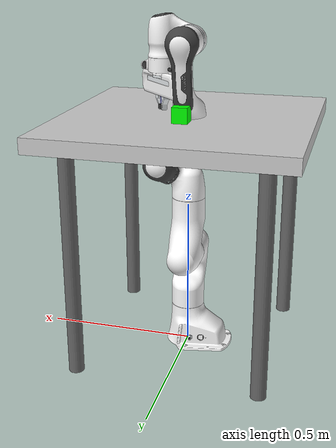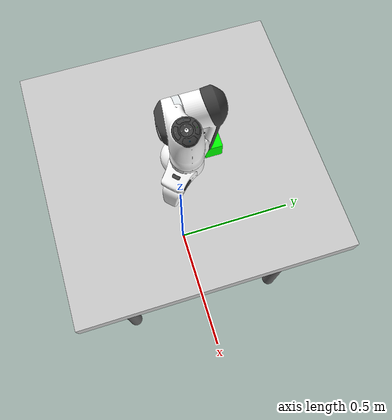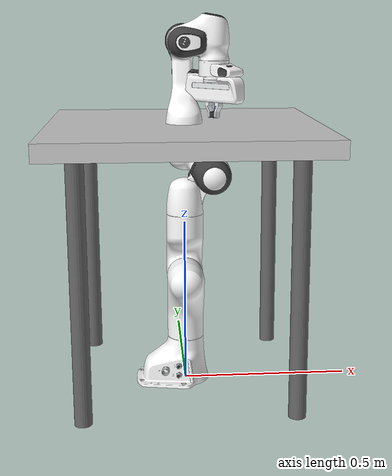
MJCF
<mujoco model="panda">
  <compiler angle="radian" meshdir="assets" autolimits="true"/>
  <option impratio="20" cone="elliptic" density="1.2" viscosity="0.00002" timestep="0.002" />
  <size nconmax="5000" njmax="5000" />

  <option integrator="implicitfast"/>

  <default>
    <default class="panda">
      <material specular="0.5" shininess="0.25"/>
      <joint armature="0.1" damping="1" axis="0 0 1" range="-2.8973 2.8973"/>
      <default class="finger">
        <joint axis="0 1 0" type="slide" range="0 0.04"/>
      </default>
      <default class="visual">
        <geom type="mesh" contype="0" conaffinity="0" group="2"/>
      </default>
      <default class="collision">
        <geom type="mesh" group="3"/>
      </default>
    </default>
  </default>

  <asset>
    <material class="panda" name="white" rgba="1 1 1 1"/>
    <material class="panda" name="off_white" rgba="0.901961 0.921569 0.929412 1"/>
    <material class="panda" name="black" rgba="0.25 0.25 0.25 1"/>
    <material class="panda" name="green" rgba="0 1 0 1"/>
    <material class="panda" name="light_blue" rgba="0.039216 0.541176 0.780392 1"/>

    <!-- Add materials for the table -->
    <material name="table_ceramic" rgba="0.8 0.8 0.8 1" shininess="0.0" specular="0.2"/>
    <material name="table_legs_metal" rgba="0.4 0.4 0.4 1" shininess="0.8" reflectance="0.8"/>

    <!-- Sensor pad material -->
    <material name="sensor_pad_material" rgba="0.3 0.3 0.8 0.5" shininess="0.0" specular="0.0"/>

    <!-- Cube materials to match original environment -->
    <material name="cubeA_redwood_mat" rgba="1 0 0 1" specular="0.4" shininess="0.1"/>
    <material name="cubeB_greenwood_mat" rgba="0 1 0 1" specular="0.4" shininess="0.1"/>

    <!-- Collision meshes -->
    <mesh name="link0_c" file="link0.stl"/>
    <mesh name="link1_c" file="link1.stl"/>
    <mesh name="link2_c" file="link2.stl"/>
    <mesh name="link3_c" file="link3.stl"/>
    <mesh name="link4_c" file="link4.stl"/>
    <mesh name="link5_c0" file="link5_collision_0.obj"/>
    <mesh name="link5_c1" file="link5_collision_1.obj"/>
    <mesh name="link5_c2" file="link5_collision_2.obj"/>
    <mesh name="link6_c" file="link6.stl"/>
    <mesh name="link7_c" file="link7.stl"/>
    <mesh name="hand_c" file="hand.stl"/>

    <!-- Visual meshes -->
    <mesh file="link0_0.obj"/>
    <mesh file="link0_1.obj"/>
    <mesh file="link0_2.obj"/>
    <mesh file="link0_3.obj"/>
    <mesh file="link0_4.obj"/>
    <mesh file="link0_5.obj"/>
    <mesh file="link0_7.obj"/>
    <mesh file="link0_8.obj"/>
    <mesh file="link0_9.obj"/>
    <mesh file="link0_10.obj"/>
    <mesh file="link0_11.obj"/>
    <mesh file="link1.obj"/>
    <mesh file="link2.obj"/>
    <mesh file="link3_0.obj"/>
    <mesh file="link3_1.obj"/>
    <mesh file="link3_2.obj"/>
    <mesh file="link3_3.obj"/>
    <mesh file="link4_0.obj"/>
    <mesh file="link4_1.obj"/>
    <mesh file="link4_2.obj"/>
    <mesh file="link4_3.obj"/>
    <mesh file="link5_0.obj"/>
    <mesh file="link5_1.obj"/>
    <mesh file="link5_2.obj"/>
    <mesh file="link6_0.obj"/>
    <mesh file="link6_1.obj"/>
    <mesh file="link6_2.obj"/>
    <mesh file="link6_3.obj"/>
    <mesh file="link6_4.obj"/>
    <mesh file="link6_5.obj"/>
    <mesh file="link6_6.obj"/>
    <mesh file="link6_7.obj"/>
    <mesh file="link6_8.obj"/>
    <mesh file="link6_9.obj"/>
    <mesh file="link6_10.obj"/>
    <mesh file="link6_11.obj"/>
    <mesh file="link6_12.obj"/>
    <mesh file="link6_13.obj"/>
    <mesh file="link6_14.obj"/>
    <mesh file="link6_15.obj"/>
    <mesh file="link6_16.obj"/>
    <mesh file="link7_0.obj"/>
    <mesh file="link7_1.obj"/>
    <mesh file="link7_2.obj"/>
    <mesh file="link7_3.obj"/>
    <mesh file="link7_4.obj"/>
    <mesh file="link7_5.obj"/>
    <mesh file="link7_6.obj"/>
    <mesh file="link7_7.obj"/>
    <mesh file="hand_0.obj"/>
    <mesh file="hand_1.obj"/>
    <mesh file="hand_2.obj"/>
    <mesh file="hand_3.obj"/>
    <mesh file="hand_4.obj"/>
    <mesh file="finger_0.obj"/>
    <mesh file="finger_1.obj"/>
  </asset>

  <worldbody>
    <light name="top" pos="0 0 2" mode="trackcom"/>

    <!-- Modified table body - removed static attribute and adjusted height -->
    <body name="table" pos="0.0 0.0 0.775">
      <geom pos="0 0 0" size="0.4 0.4 0.025" type="box" group="3" name="table_collision" friction="1.0 0.005 0.0001" rgba="0.5 0.5 0 1" />
      <geom pos="0 0 0" size="0.4 0.4 0.025" type="box" conaffinity="0" contype="0" group="2" name="table_visual" material="table_ceramic" />

      <!-- Adjusted table legs to match original -->
      <geom pos="0.30 0.30 -0.3875" size="0.025 0.3875" type="cylinder" conaffinity="0" contype="0" group="2" name="table_leg1_visual" material="table_legs_metal" />
      <geom pos="-0.30 0.30 -0.3875" size="0.025 0.3875" type="cylinder" conaffinity="0" contype="0" group="2" name="table_leg2_visual" material="table_legs_metal" />
      <geom pos="-0.30 -0.30 -0.3875" size="0.025 0.3875" type="cylinder" conaffinity="0" contype="0" group="2" name="table_leg3_visual" material="table_legs_metal" />
      <geom pos="0.30 -0.30 -0.3875" size="0.025 0.3875" type="cylinder" conaffinity="0" contype="0" group="2" name="table_leg4_visual" material="table_legs_metal" />

      <!-- Added table_top site from original -->
      <site pos="0.0 0.0 0.025" name="table_top" size="0.001 0.001 0.001" rgba="0 0 0 0" />
    </body>

    <!-- Updated cubes to match original environment's structure -->
    <!-- cubeA: 2cm × 2cm × 2cm -->
    <body name="cubeA_main" pos="0.0 0.0 0.825">
      <joint type="free" name="cubeA_joint0" />
      <geom type="box" name="cubeA_g0" size="0.02 0.02 0.02" condim="3"
       friction="1 0.005 0.0001" solref="0.02 1.0" solimp="0.9 0.95 0.001" rgba="0.5 0 0 1" density="1000" group="3" />
      <geom type="box" name="cubeA_g0_vis" size="0.02 0.02 0.02" conaffinity="0" contype="0" mass="1e-8" material="cubeA_redwood_mat" group="2" />
      <site type="sphere" group="0" pos="0 0 0" size="0.002 0.002 0.002" rgba="1 0 0 1" name="cubeA_default_site" />
    </body>

    <!-- cubeB: 2.5cm × 2.5cm × 2.5cm -->
    <body name="cubeB_main" pos="0.0 0.1 0.825">
      <joint type="free" name="cubeB_joint0" />
      <geom type="box" name="cubeB_g0" size="0.025 0.025 0.025" condim="3"
       friction="1 0.005 0.0001" solref="0.02 1.0" solimp="0.9 0.95 0.001" rgba="0.5 0 0 1" density="1000" group="3" />
      <geom type="box" name="cubeB_g0_vis" size="0.025 0.025 0.025" conaffinity="0" contype="0" mass="1e-8" material="cubeB_greenwood_mat" group="2" />
      <site type="sphere" group="0" pos="0 0 0" size="0.002 0.002 0.002" rgba="1 0 0 1" name="cubeB_default_site" />
    </body>

    <body name="link0" childclass="panda">
      <inertial mass="0.629769" pos="-0.041018 -0.00014 0.049974"
        fullinertia="0.00315 0.00388 0.004285 8.2904e-7 0.00015 8.2299e-6"/>
      <geom mesh="link0_0" material="off_white" class="visual"/>
      <geom mesh="link0_1" material="black" class="visual"/>
      <geom mesh="link0_2" material="off_white" class="visual"/>
      <geom mesh="link0_3" material="black" class="visual"/>
      <geom mesh="link0_4" material="off_white" class="visual"/>
      <geom mesh="link0_5" material="black" class="visual"/>
      <geom mesh="link0_7" material="white" class="visual"/>
      <geom mesh="link0_8" material="white" class="visual"/>
      <geom mesh="link0_9" material="black" class="visual"/>
      <geom mesh="link0_10" material="off_white" class="visual"/>
      <geom mesh="link0_11" material="white" class="visual"/>
      <geom mesh="link0_c" class="collision"/>
      <body name="link1" pos="0 0 0.333">
        <inertial mass="4.970684" pos="0.003875 0.002081 -0.04762"
          fullinertia="0.70337 0.70661 0.0091170 -0.00013900 0.0067720 0.019169"/>
        <joint name="robot0_joint1"/>
        <geom material="white" mesh="link1" class="visual"/>
        <geom mesh="link1_c" class="collision"/>
        <body name="link2" quat="1 -1 0 0">
          <inertial mass="0.646926" pos="-0.003141 -0.02872 0.003495"
            fullinertia="0.0079620 2.8110e-2 2.5995e-2 -3.925e-3 1.0254e-2 7.04e-4"/>
          <joint name="robot0_joint2" range="-1.7628 1.7628"/>
          <geom material="white" mesh="link2" class="visual"/>
          <geom mesh="link2_c" class="collision"/>
          <body name="link3" pos="0 -0.316 0" quat="1 1 0 0">
            <joint name="robot0_joint3"/>
            <inertial mass="3.228604" pos="2.7518e-2 3.9252e-2 -6.6502e-2"
              fullinertia="3.7242e-2 3.6155e-2 1.083e-2 -4.761e-3 -1.1396e-2 -1.2805e-2"/>
            <geom mesh="link3_0" material="white" class="visual"/>
            <geom mesh="link3_1" material="white" class="visual"/>
            <geom mesh="link3_2" material="white" class="visual"/>
            <geom mesh="link3_3" material="black" class="visual"/>
            <geom mesh="link3_c" class="collision"/>
            <body name="link4" pos="0.0825 0 0" quat="1 1 0 0">
              <inertial mass="3.587895" pos="-5.317e-2 1.04419e-1 2.7454e-2"
                fullinertia="2.5853e-2 1.9552e-2 2.8323e-2 7.796e-3 -1.332e-3 8.641e-3"/>
              <joint name="robot0_joint4" range="-3.0718 -0.0698"/>
              <geom mesh="link4_0" material="white" class="visual"/>
              <geom mesh="link4_1" material="white" class="visual"/>
              <geom mesh="link4_2" material="black" class="visual"/>
              <geom mesh="link4_3" material="white" class="visual"/>
              <geom mesh="link4_c" class="collision"/>
              <body name="link5" pos="-0.0825 0.384 0" quat="1 -1 0 0">
                <inertial mass="1.225946" pos="-1.1953e-2 4.1065e-2 -3.8437e-2"
                  fullinertia="3.5549e-2 2.9474e-2 8.627e-3 -2.117e-3 -4.037e-3 2.29e-4"/>
                <joint name="robot0_joint5"/>
                <geom mesh="link5_0" material="black" class="visual"/>
                <geom mesh="link5_1" material="white" class="visual"/>
                <geom mesh="link5_2" material="white" class="visual"/>
                <geom mesh="link5_c0" class="collision"/>
                <geom mesh="link5_c1" class="collision"/>
                <geom mesh="link5_c2" class="collision"/>
                <body name="link6" quat="1 1 0 0">
                  <inertial mass="1.666555" pos="6.0149e-2 -1.4117e-2 -1.0517e-2"
                    fullinertia="1.964e-3 4.354e-3 5.433e-3 1.09e-4 -1.158e-3 3.41e-4"/>
                  <joint name="robot0_joint6" range="-0.0175 3.7525"/>
                  <geom mesh="link6_0" material="off_white" class="visual"/>
                  <geom mesh="link6_1" material="white" class="visual"/>
                  <geom mesh="link6_2" material="black" class="visual"/>
                  <geom mesh="link6_3" material="white" class="visual"/>
                  <geom mesh="link6_4" material="white" class="visual"/>
                  <geom mesh="link6_5" material="white" class="visual"/>
                  <geom mesh="link6_6" material="white" class="visual"/>
                  <geom mesh="link6_7" material="light_blue" class="visual"/>
                  <geom mesh="link6_8" material="light_blue" class="visual"/>
                  <geom mesh="link6_9" material="black" class="visual"/>
                  <geom mesh="link6_10" material="black" class="visual"/>
                  <geom mesh="link6_11" material="white" class="visual"/>
                  <geom mesh="link6_12" material="green" class="visual"/>
                  <geom mesh="link6_13" material="white" class="visual"/>
                  <geom mesh="link6_14" material="black" class="visual"/>
                  <geom mesh="link6_15" material="black" class="visual"/>
                  <geom mesh="link6_16" material="white" class="visual"/>
                  <geom mesh="link6_c" class="collision"/>
                  <body name="link7" pos="0.088 0 0" quat="1 1 0 0">
                    <inertial mass="7.35522e-01" pos="1.0517e-2 -4.252e-3 6.1597e-2"
                      fullinertia="1.2516e-2 1.0027e-2 4.815e-3 -4.28e-4 -1.196e-3 -7.41e-4"/>
                    <joint name="robot0_joint7"/>
                    <geom mesh="link7_0" material="white" class="visual"/>
                    <geom mesh="link7_1" material="black" class="visual"/>
                    <geom mesh="link7_2" material="black" class="visual"/>
                    <geom mesh="link7_3" material="black" class="visual"/>
                    <geom mesh="link7_4" material="black" class="visual"/>
                    <geom mesh="link7_5" material="black" class="visual"/>
                    <geom mesh="link7_6" material="black" class="visual"/>
                    <geom mesh="link7_7" material="white" class="visual"/>
                    <geom mesh="link7_c" class="collision"/>
                    <!-- Using right_hand to match original -->
                    <body name="right_hand" pos="0 0 0.1065" quat="0.924 0 0 -0.383">
                      <inertial mass="0.73" pos="-0.01 0 0.03" diaginertia="0.001 0.0025 0.0017"/>
                      <geom mesh="hand_0" material="off_white" class="visual"/>
                      <geom mesh="hand_1" material="black" class="visual"/>
                      <geom mesh="hand_2" material="black" class="visual"/>
                      <geom mesh="hand_3" material="white" class="visual"/>
                      <geom mesh="hand_4" material="off_white" class="visual"/>
                      <geom mesh="hand_c" class="collision"/>

                      <!-- Added essential camera and site elements from original model -->
                      <camera mode="fixed" name="eye_in_hand" pos="0.05 0 0" quat="0 0.707108 0.707108 0" fovy="75"/>
                      <site name="grip_site" pos="0 0 0" size="0.01 0.01 0.01" rgba="1 0 0 0.5" type="sphere" group="1"/>
                      <site name="ee_x" pos="0.1 0 0" size="0.005 .1" quat="0.707105 0 0.707108 0" rgba="1 0 0 0" type="cylinder" group="1"/>
                      <site name="ee_y" pos="0 0.1 0" size="0.005 .1" quat="0.707105 0.707108 0 0" rgba="0 1 0 0" type="cylinder" group="1"/>
                      <site name="ee_z" pos="0 0 0.1" size="0.005 .1" quat="1 0 0 0" rgba="0 0 1 0" type="cylinder" group="1"/>

                      <body name="gripper0_right_leftfinger" pos="0 0 0.0584">
                        <inertial mass="0.015" pos="0 0 0" diaginertia="2.375e-6 2.375e-6 7.5e-7"/>
                        <joint name="gripper0_right_finger_joint1" class="finger"/>
                        <geom mesh="finger_0" material="off_white" class="visual"/>
                        <geom mesh="finger_1" material="black" class="visual"/>
                        <geom mesh="finger_0" class="collision"/>
                        <geom name="left_sensor_pad" type="box" size="0.005 0.001 0.015" pos="0 0.006 0.025" rgba="0.3 0.3 0.8 0.5" material="sensor_pad_material" group="2"/>

                        <!-- Add all left taxel sites here -->
                        <site name="left_taxel_0_0" pos="-0.005000 0.006 0.010000" size="0.001" rgba="0 0 1 0.5" type="sphere" />
                        <site name="left_taxel_0_1" pos="-0.001667 0.006 0.010000" size="0.001" rgba="0 0 1 0.5" type="sphere" />
                        <site name="left_taxel_0_2" pos="0.001667 0.006 0.010000" size="0.001" rgba="0 0 1 0.5" type="sphere" />
                        <site name="left_taxel_0_3" pos="0.005000 0.006 0.010000" size="0.001" rgba="0 0 1 0.5" type="sphere" />
                        <site name="left_taxel_1_0" pos="-0.005000 0.006 0.025000" size="0.001" rgba="0 0 1 0.5" type="sphere" />
                        <site name="left_taxel_1_1" pos="-0.001667 0.006 0.025000" size="0.001" rgba="0 0 1 0.5" type="sphere" />
                        <site name="left_taxel_1_2" pos="0.001667 0.006 0.025000" size="0.001" rgba="0 0 1 0.5" type="sphere" />
                        <site name="left_taxel_1_3" pos="0.005000 0.006 0.025000" size="0.001" rgba="0 0 1 0.5" type="sphere" />
                        <site name="left_taxel_2_0" pos="-0.005000 0.006 0.040000" size="0.001" rgba="0 0 1 0.5" type="sphere" />
                        <site name="left_taxel_2_1" pos="-0.001667 0.006 0.040000" size="0.001" rgba="0 0 1 0.5" type="sphere" />
                        <site name="left_taxel_2_2" pos="0.001667 0.006 0.040000" size="0.001" rgba="0 0 1 0.5" type="sphere" />
                        <site name="left_taxel_2_3" pos="0.005000 0.006 0.040000" size="0.001" rgba="0 0 1 0.5" type="sphere" />
                      </body>
                      <body name="gripper0_right_rightfinger" pos="0 0 0.0584" quat="0 0 0 1">
                        <inertial mass="0.015" pos="0 0 0" diaginertia="2.375e-6 2.375e-6 7.5e-7"/>
                        <joint name="gripper0_right_finger_joint2" class="finger"/>
                        <geom mesh="finger_0" material="off_white" class="visual"/>
                        <geom mesh="finger_1" material="black" class="visual"/>
                        <geom mesh="finger_0" class="collision"/>
                        <geom name="right_sensor_pad" type="box" size="0.005 0.001 0.015" pos="0 -0.006 0.025" rgba="0.3 0.3 0.8 0.5" material="sensor_pad_material" group="2"/>

                        <!-- Add all right taxel sites here -->
                        <site name="right_taxel_0_0" pos="-0.005000 -0.006 0.010000" size="0.001" rgba="1 0 0 0.5" type="sphere" />
                        <site name="right_taxel_0_1" pos="-0.001667 -0.006 0.010000" size="0.001" rgba="1 0 0 0.5" type="sphere" />
                        <site name="right_taxel_0_2" pos="0.001667 -0.006 0.010000" size="0.001" rgba="1 0 0 0.5" type="sphere" />
                        <site name="right_taxel_0_3" pos="0.005000 -0.006 0.010000" size="0.001" rgba="1 0 0 0.5" type="sphere" />
                        <site name="right_taxel_1_0" pos="-0.005000 -0.006 0.025000" size="0.001" rgba="1 0 0 0.5" type="sphere" />
                        <site name="right_taxel_1_1" pos="-0.001667 -0.006 0.025000" size="0.001" rgba="1 0 0 0.5" type="sphere" />
                        <site name="right_taxel_1_2" pos="0.001667 -0.006 0.025000" size="0.001" rgba="1 0 0 0.5" type="sphere" />
                        <site name="right_taxel_1_3" pos="0.005000 -0.006 0.025000" size="0.001" rgba="1 0 0 0.5" type="sphere" />
                        <site name="right_taxel_2_0" pos="-0.005000 -0.006 0.040000" size="0.001" rgba="1 0 0 0.5" type="sphere" />
                        <site name="right_taxel_2_1" pos="-0.001667 -0.006 0.040000" size="0.001" rgba="1 0 0 0.5" type="sphere" />
                        <site name="right_taxel_2_2" pos="0.001667 -0.006 0.040000" size="0.001" rgba="1 0 0 0.5" type="sphere" />
                        <site name="right_taxel_2_3" pos="0.005000 -0.006 0.040000" size="0.001" rgba="1 0 0 0.5" type="sphere" />
                      </body>
                    </body>
                  </body>
                </body>
              </body>
            </body>
          </body>
        </body>
      </body>
    </body>

    <camera mode="fixed" name="frontview" pos="1.6 0.0 1.45" quat="0.56 0.43 0.43 0.56" />
    <camera mode="fixed" name="birdview" pos="-0.2 0.0 3.0" quat="0.7071 0 0 0.7071" />
    <camera mode="fixed" name="agentview" pos="0.5 0.0 1.35" quat="0.653 0.271 0.271 0.653" />
    <camera mode="fixed" name="sideview" pos="-0.05651774593317116 1.2761224129427358 1.4879572214102434" quat="0.009905065491771751 0.006877963156909582 0.5912228352893879 0.806418094001364" />

    <!-- Simple boundary walls (simplified from the base model) -->
    <geom pos="0 0 0.05" size="0.8 0.8 0.01" type="plane" conaffinity="1" contype="1" group="3" name="boundary"/>
  </worldbody>

  <tendon>
    <fixed name="split">
      <joint joint="gripper0_right_finger_joint1" coef="0.5"/>
      <joint joint="gripper0_right_finger_joint2" coef="0.5"/>
    </fixed>
  </tendon>

  <equality>
    <joint joint1="gripper0_right_finger_joint1" joint2="gripper0_right_finger_joint2" solimp="0.95 0.99 0.001" solref="0.005 1"/>
  </equality>

  <!-- IMPORTANT CHANGE: Renamed actuators to match original -->
  <actuator>
    <motor ctrllimited="true" ctrlrange="-80.0 80.0" joint="robot0_joint1" name="robot0_torq_j1"/>
    <motor ctrllimited="true" ctrlrange="-80.0 80.0" joint="robot0_joint2" name="robot0_torq_j2"/>
    <motor ctrllimited="true" ctrlrange="-80.0 80.0" joint="robot0_joint3" name="robot0_torq_j3"/>
    <motor ctrllimited="true" ctrlrange="-80.0 80.0" joint="robot0_joint4" name="robot0_torq_j4"/>
    <motor ctrllimited="true" ctrlrange="-80.0 80.0" joint="robot0_joint5" name="robot0_torq_j5"/>
    <motor ctrllimited="true" ctrlrange="-12.0 12.0" joint="robot0_joint6" name="robot0_torq_j6"/>
    <motor ctrllimited="true" ctrlrange="-12.0 12.0" joint="robot0_joint7" name="robot0_torq_j7"/>
    <position ctrllimited="true" ctrlrange="0.0 0.04" joint="gripper0_right_finger_joint1" kp="1000" name="gripper0_right_gripper_finger_joint1" forcelimited="true" forcerange="-20 20"/>
    <position ctrllimited="true" ctrlrange="-0.04 0.0" joint="gripper0_right_finger_joint2" kp="1000" name="gripper0_right_gripper_finger_joint2" forcelimited="true" forcerange="-20 20"/>
  </actuator>

  <sensor>
    <!-- Added essential force sensors from original -->
    <force name="gripper0_right_force_ee" site="grip_site" />
    <torque name="gripper0_right_torque_ee" site="grip_site" />

    <!-- Touch sensors for tactile sensing -->
    <touch name="left_taxel_0_0_sensor" site="left_taxel_0_0" />
    <touch name="right_taxel_0_0_sensor" site="right_taxel_0_0" />
    <touch name="left_taxel_0_1_sensor" site="left_taxel_0_1" />
    <touch name="right_taxel_0_1_sensor" site="right_taxel_0_1" />
    <touch name="left_taxel_0_2_sensor" site="left_taxel_0_2" />
    <touch name="right_taxel_0_2_sensor" site="right_taxel_0_2" />
    <touch name="left_taxel_0_3_sensor" site="left_taxel_0_3" />
    <touch name="right_taxel_0_3_sensor" site="right_taxel_0_3" />
    <touch name="left_taxel_1_0_sensor" site="left_taxel_1_0" />
    <touch name="right_taxel_1_0_sensor" site="right_taxel_1_0" />
    <touch name="left_taxel_1_1_sensor" site="left_taxel_1_1" />
    <touch name="right_taxel_1_1_sensor" site="right_taxel_1_1" />
    <touch name="left_taxel_1_2_sensor" site="left_taxel_1_2" />
    <touch name="right_taxel_1_2_sensor" site="right_taxel_1_2" />
    <touch name="left_taxel_1_3_sensor" site="left_taxel_1_3" />
    <touch name="right_taxel_1_3_sensor" site="right_taxel_1_3" />
    <touch name="left_taxel_2_0_sensor" site="left_taxel_2_0" />
    <touch name="right_taxel_2_0_sensor" site="right_taxel_2_0" />
    <touch name="left_taxel_2_1_sensor" site="left_taxel_2_1" />
    <touch name="right_taxel_2_1_sensor" site="right_taxel_2_1" />
    <touch name="left_taxel_2_2_sensor" site="left_taxel_2_2" />
    <touch name="right_taxel_2_2_sensor" site="right_taxel_2_2" />
    <touch name="left_taxel_2_3_sensor" site="left_taxel_2_3" />
    <touch name="right_taxel_2_3_sensor" site="right_taxel_2_3" />
  </sensor>
</mujoco>
